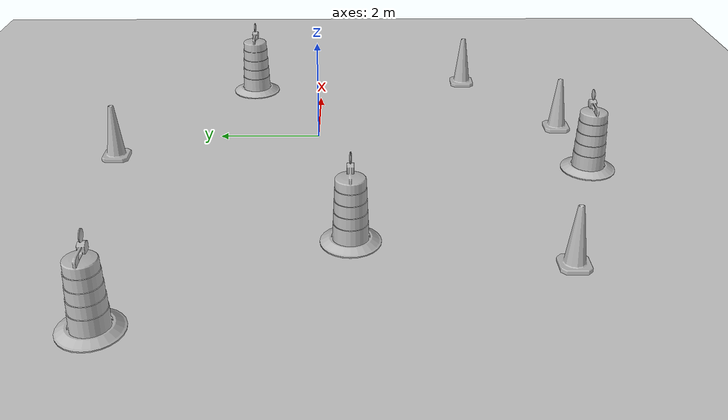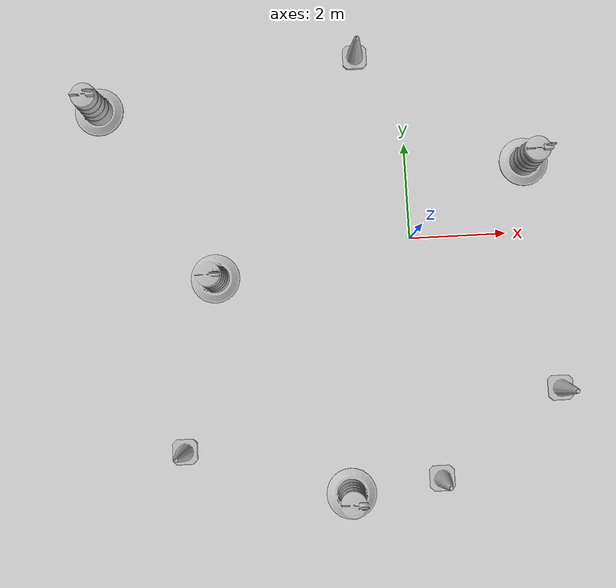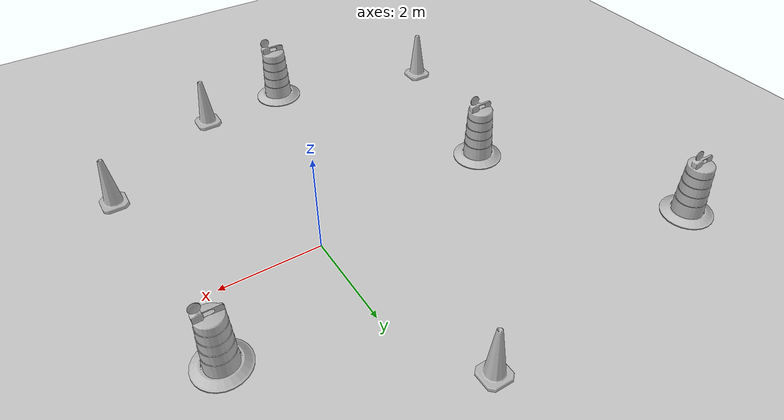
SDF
<sdf version="1.7">
 <world name="default">
  <light name="sun" type="directional">
   <pose>0 0 10 0 -0 0</pose>
   <diffuse>0.8 0.8 0.8 1</diffuse>
   <specular>0.2 0.2 0.2 1</specular>
   <attenuation>
    <range>1000</range>
    <constant>0.9</constant>
    <linear>0.01</linear>
    <quadratic>0.001</quadratic>
   </attenuation>
   <direction>-0.5 0.1 -0.9</direction>
   <spot><inner_angle>0</inner_angle><outer_angle>0</outer_angle><falloff>0</falloff></spot>
  </light>
  <model name="ground_plane">
   <static>1</static>
   <link name="link">
    <collision name="collision">
     <geometry><plane><normal>0 0 1</normal><size>100 100</size></plane></geometry>
     <surface><friction><ode><mu>100</mu><mu2>50</mu2></ode></friction></surface>
    </collision>
    <visual name="visual">
     <cast_shadows>0</cast_shadows>
     <geometry><plane><normal>0 0 1</normal><size>100 100</size></plane></geometry>
     <material>
      <script><uri>file://media/materials/scripts/gazebo.material</uri><name>Gazebo/Grey</name></script>
     </material>
    </visual>
   </link>
  </model>
  <gravity>0 0 -9.8</gravity>
  <magnetic_field>6e-06 2.3e-05 -4.2e-05</magnetic_field>
  <atmosphere type="adiabatic"/>
  <physics type="ode">
   <max_step_size>0.001</max_step_size>
   <real_time_factor>1</real_time_factor>
   <real_time_update_rate>1000</real_time_update_rate>
  </physics>
  <scene><ambient>0.4 0.4 0.4 1</ambient><background>0.7 0.7 0.7 1</background><shadows>1</shadows></scene>
  <audio><device>default</device></audio>
  <spherical_coordinates>
   <surface_model>EARTH_WGS84</surface_model>
   <latitude_deg>0</latitude_deg>
   <longitude_deg>0</longitude_deg>
   <elevation>0</elevation>
   <heading_deg>0</heading_deg>
  </spherical_coordinates>
  <model name="Construction Barrel">
   <link name="link">
    <inertial>
     <pose>0 0 0.4 0 -0 0</pose>
     <mass>500</mass>
     <inertia><ixx>51.2096</ixx><iyy>51.2096</iyy><izz>25</izz><ixy>0</ixy><ixz>0</ixz><iyz>0</iyz></inertia>
    </inertial>
    <collision name="collision">
     <geometry><mesh><uri>model://construction_barrel/meshes/construction_barrel.dae</uri></mesh></geometry>
    </collision>
    <visual name="visual">
     <geometry><mesh><uri>model://construction_barrel/meshes/construction_barrel.dae</uri></mesh></geometry>
    </visual>
   </link>
   <pose>-4.08995 -0.638715 -2e-06 8e-06 -4e-06 -2.1e-05</pose>
  </model>
  <model name="Construction Cone">
   <link name="link">
    <collision name="collision">
     <geometry>
      <mesh><scale>10 10 10</scale><uri>model://construction_cone/meshes/construction_cone.dae</uri></mesh>
     </geometry>
    </collision>
    <visual name="visual">
     <geometry>
      <mesh><scale>10 10 10</scale><uri>model://construction_cone/meshes/construction_cone.dae</uri></mesh>
     </geometry>
    </visual>
    <inertial>
     <inertia><ixx>1</ixx><ixy>0</ixy><ixz>0</ixz><iyy>1</iyy><iyz>0</iyz><izz>1</izz></inertia>
     <mass>1</mass>
    </inertial>
   </link>
   <pose>-0.936168 3.92925 -0 0 -0 0</pose>
  </model>
  <model name="Construction Cone_0">
   <link name="link">
    <collision name="collision">
     <geometry>
      <mesh><scale>10 10 10</scale><uri>model://construction_cone/meshes/construction_cone.dae</uri></mesh>
     </geometry>
    </collision>
    <visual name="visual">
     <geometry>
      <mesh><scale>10 10 10</scale><uri>model://construction_cone/meshes/construction_cone.dae</uri></mesh>
     </geometry>
    </visual>
    <inertial>
     <inertia><ixx>1</ixx><ixy>0</ixy><ixz>0</ixz><iyy>1</iyy><iyz>0</iyz><izz>1</izz></inertia>
     <mass>1</mass>
    </inertial>
   </link>
   <pose>-4.84912 -4.14956 0 -0 -0 -0</pose>
  </model>
  <model name="Construction Cone_1">
   <link name="link">
    <collision name="collision">
     <geometry>
      <mesh><scale>10 10 10</scale><uri>model://construction_cone/meshes/construction_cone.dae</uri></mesh>
     </geometry>
    </collision>
    <visual name="visual">
     <geometry>
      <mesh><scale>10 10 10</scale><uri>model://construction_cone/meshes/construction_cone.dae</uri></mesh>
     </geometry>
    </visual>
    <inertial>
     <inertia><ixx>1</ixx><ixy>0</ixy><ixz>0</ixz><iyy>1</iyy><iyz>0</iyz><izz>1</izz></inertia>
     <mass>1</mass>
    </inertial>
   </link>
   <pose>2.89918 -3.2545 -1e-05 0 -0 0</pose>
  </model>
  <model name="Construction Barrel_0">
   <link name="link">
    <inertial>
     <pose>0 0 0.4 0 -0 0</pose>
     <mass>500</mass>
     <inertia><ixx>51.2096</ixx><iyy>51.2096</iyy><izz>25</izz><ixy>0</ixy><ixz>0</ixz><iyz>0</iyz></inertia>
    </inertial>
    <collision name="collision">
     <geometry><mesh><uri>model://construction_barrel/meshes/construction_barrel.dae</uri></mesh></geometry>
    </collision>
    <visual name="visual">
     <geometry><mesh><uri>model://construction_barrel/meshes/construction_barrel.dae</uri></mesh></geometry>
    </visual>
   </link>
   <pose>2.49425 1.49129 -3e-06 -7e-06 -1.2e-05 -1.7e-05</pose>
  </model>
  <model name="Construction Barrel_1">
   <link name="link">
    <inertial>
     <pose>0 0 0.4 0 -0 0</pose>
     <mass>500</mass>
     <inertia><ixx>51.2096</ixx><iyy>51.2096</iyy><izz>25</izz><ixy>0</ixy><ixz>0</ixz><iyz>0</iyz></inertia>
    </inertial>
    <collision name="collision">
     <geometry><mesh><uri>model://construction_barrel/meshes/construction_barrel.dae</uri></mesh></geometry>
    </collision>
    <visual name="visual">
     <geometry><mesh><uri>model://construction_barrel/meshes/construction_barrel.dae</uri></mesh></geometry>
    </visual>
   </link>
   <pose>-6.40466 3.02872 -2e-06 1e-06 8e-06 -1.6e-05</pose>
  </model>
  <model name="Construction Cone_2">
   <link name="link">
    <collision name="collision">
     <geometry>
      <mesh><scale>10 10 10</scale><uri>model://construction_cone/meshes/construction_cone.dae</uri></mesh>
     </geometry>
    </collision>
    <visual name="visual">
     <geometry>
      <mesh><scale>10 10 10</scale><uri>model://construction_cone/meshes/construction_cone.dae</uri></mesh>
     </geometry>
    </visual>
    <inertial>
     <inertia><ixx>1</ixx><ixy>0</ixy><ixz>0</ixz><iyy>1</iyy><iyz>0</iyz><izz>1</izz></inertia>
     <mass>1</mass>
    </inertial>
   </link>
   <pose>0.352139 -4.94796 -0 0 -1e-06 0</pose>
  </model>
  <model name="Construction Barrel_2">
   <link name="link">
    <inertial>
     <pose>0 0 0.4 0 -0 0</pose>
     <mass>500</mass>
     <inertia><ixx>51.2096</ixx><iyy>51.2096</iyy><izz>25</izz><ixy>0</ixy><ixz>0</ixz><iyz>0</iyz></inertia>
    </inertial>
    <collision name="collision">
     <geometry><mesh><uri>model://construction_barrel/meshes/construction_barrel.dae</uri></mesh></geometry>
    </collision>
    <visual name="visual">
     <geometry><mesh><uri>model://construction_barrel/meshes/construction_barrel.dae</uri></mesh></geometry>
    </visual>
   </link>
   <pose>-1.50168 -5.16189 -2e-06 8e-06 -4e-06 -9e-06</pose>
  </model>
 </world>
</sdf>
